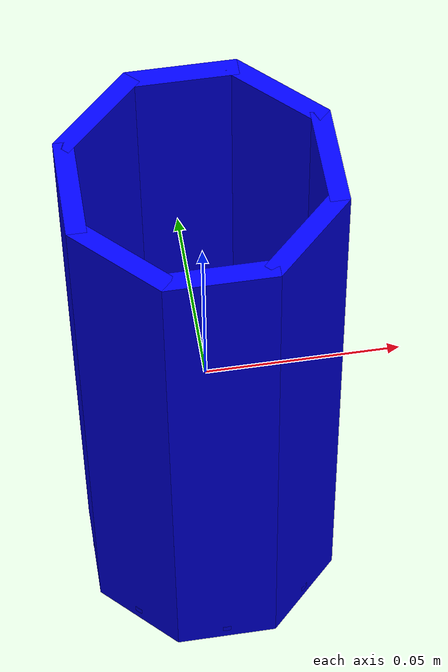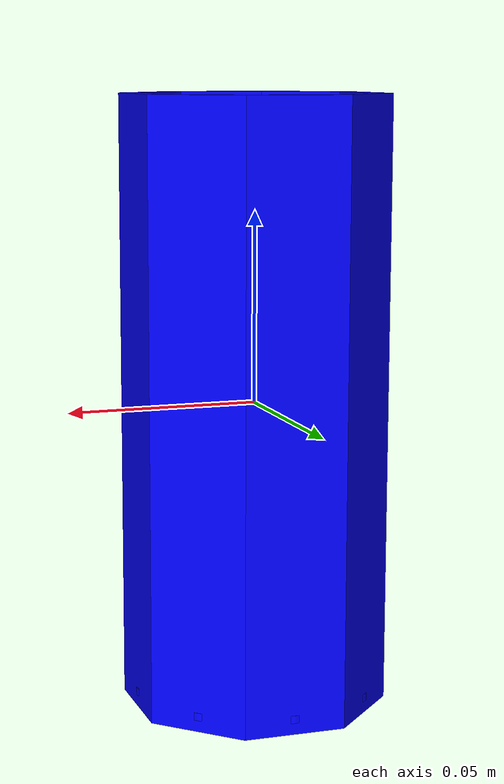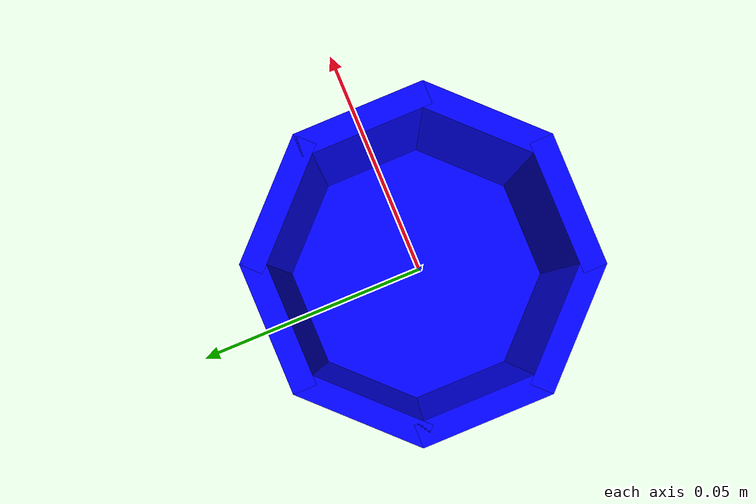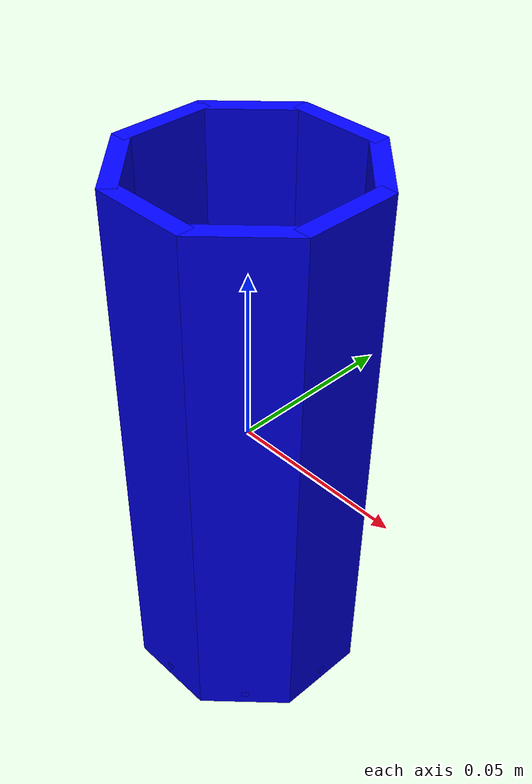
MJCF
<mujoco>
  <option noslip_iterations="5" noslip_tolerance="1e-6">
  </option>
  <compiler angle="radian" />
  <worldbody>
      <body name="cup" pos="0 0 0">
          <inertial pos="0 0 0" mass="0.5" diaginertia="0.0013 0.0013 0.00045"/>
          <freejoint />
          <geom type="cylinder" pos="0 0 -0.076" size="0.03255 0.001" rgba="0 0 1 1"/>
          <geom type="box" pos="0.03 0 0" euler="0 0 0" size="0.0024 0.013420519420888278 0.08" rgba="0 0 1 1" />
          <geom type="box" pos="0.021213 0.021213 0" euler="0 0 0.7853981633974483" size="0.0024 0.013420519420888278 0.08" rgba="0 0 1 1" />
          <geom type="box" pos="0 0.03 0" euler="0 0 1.5707963267948966" size="0.0024 0.013420519420888278 0.08" rgba="0 0 1 1" />
          <geom type="box" pos="-0.021213 0.021213 0" euler="0 0 2.356194490192345" size="0.0024 0.013420519420888278 0.08" rgba="0 0 1 1" />
          <geom type="box" pos="-0.03 0 0" euler="0 0 3.141592653589793" size="0.0024 0.013420519420888278 0.08" rgba="0 0 1 1" />
          <geom type="box" pos="-0.021213 -0.021213 0" euler="0 0 -2.356194490192345" size="0.0024 0.013420519420888278 0.08" rgba="0 0 1 1" />
          <geom type="box" pos="0 -0.03 0" euler="0 0 -1.5707963267948966" size="0.0024 0.013420519420888278 0.08" rgba="0 0 1 1" />
          <geom type="box" pos="0.021213 -0.021213 0" euler="0 0 -0.7853981633974483" size="0.0024 0.013420519420888278 0.08" rgba="0 0 1 1" />
      </body>
  </worldbody>
</mujoco>
